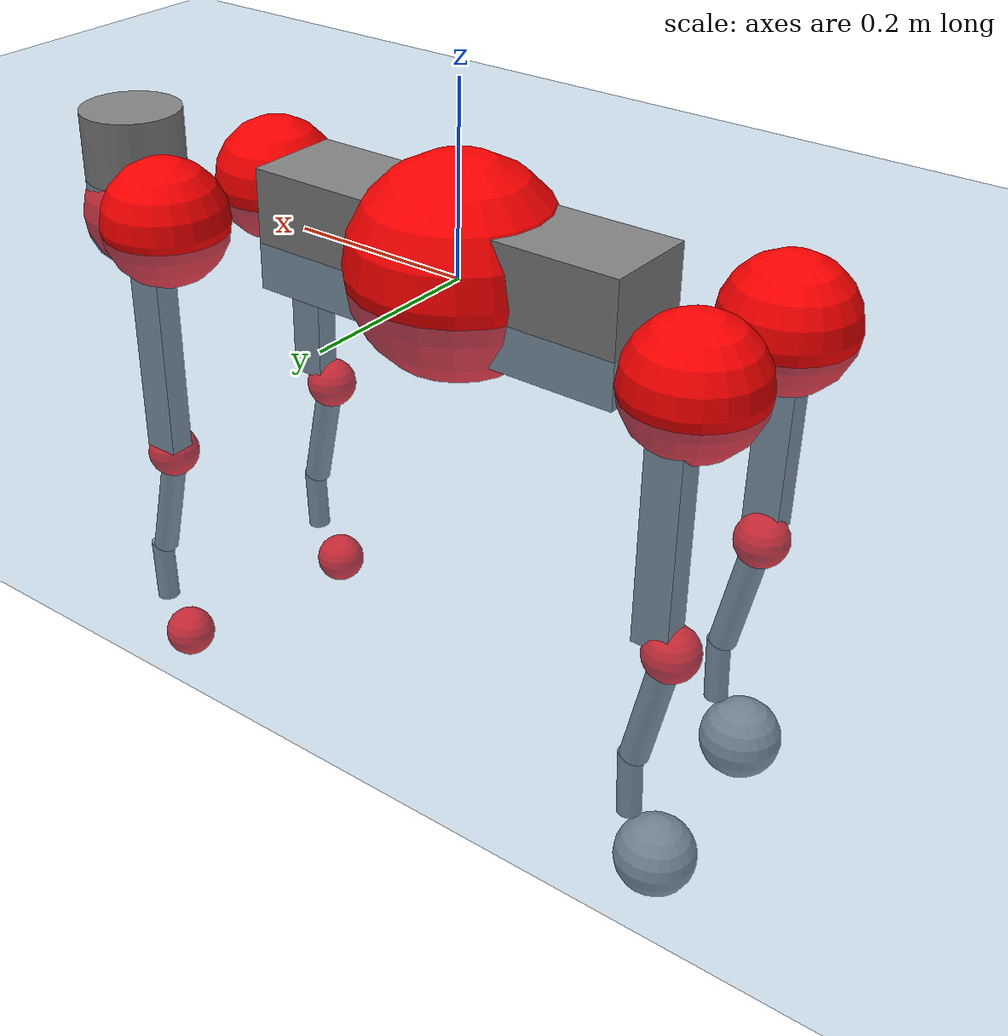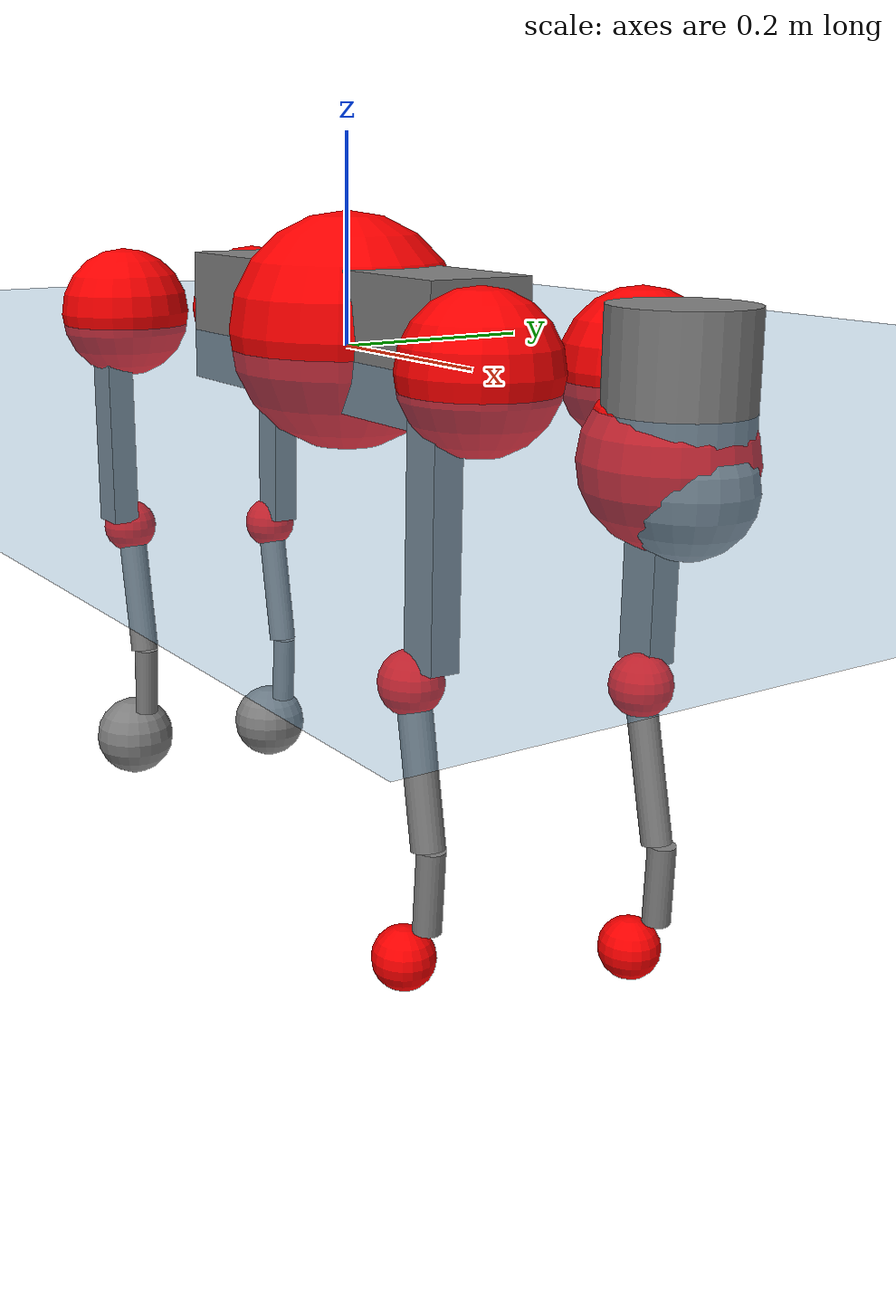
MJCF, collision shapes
<mujoco model="go2">
  <compiler angle="radian" assetdir="assets" balanceinertia="true" inertiafromgeom="false"/>

  <option timestep="0.005" density="1.2" viscosity="2e-05"/>

  <size nkey="1"/>

  <visual>
    <quality shadowsize="8192"/>
    <map shadowclip="0.5"/>
  </visual>

  <default>
    <default class="/">
      <geom contype="0" conaffinity="0" group="1" solref="-1000 -80"/>
      <site size="0.01 0.005 0.005" group="5"/>
      <general forcelimited="true" biastype="affine" gainprm="20" biasprm="0 -20 -0.5"/>
      <default class="go2">
        <joint armature="0.01" damping="0.01" frictionloss="0.2"/>
        <geom condim="1" margin="0.001"/>
        <default class="visual">
          <geom type="mesh" group="2"/>
        </default>
        <default class="collision">
          <geom group="3"/>
          <default class="foot">
            <geom size="0.022 0 0" condim="6" priority="1" friction="0.8 0.02 0.01" solimp="0.015 1 0.022"/>
          </default>
        </default>
        <default class="reward_collision_sphere">
          <geom group="5" rgba="1 0 0 1"/>
        </default>
      </default>
    </default>
  </default>

  <asset>
    <texture type="skybox" colorspace="auto" name="//unnamed_texture_0" builtin="gradient" rgb1="0.95 0.95 0.95" rgb2="0.95 0.95 0.95" width="100" height="600"/>
    <texture type="2d" colorspace="auto" name="texplane" builtin="checker" rgb1="0.345 0.575 0.748" rgb2="0.345 0.575 0.748" markrgb="1 1 1" width="512" height="512"/>
    <material name="MatPlane" class="/" texture="texplane" texuniform="true" texrepeat="2 2" specular="0.9"/>
    <material name="metal" class="/" rgba="0.9 0.95 0.95 1"/>
    <material name="black" class="/" rgba="0 0 0 1"/>
    <material name="white" class="/"/>
    <material name="gray" class="/" rgba="0.671705 0.692426 0.77427 1"/>
    <mesh name="base_0" class="/" file="base_0.obj"/>
    <mesh name="base_1" class="/" file="base_1.obj"/>
    <mesh name="base_2" class="/" file="base_2.obj"/>
    <mesh name="base_3" class="/" file="base_3.obj"/>
    <mesh name="base_4" class="/" file="base_4.obj"/>
    <mesh name="hip_0" class="/" file="hip_0.obj"/>
    <mesh name="hip_1" class="/" file="hip_1.obj"/>
    <mesh name="thigh_0" class="/" file="thigh_0.obj"/>
    <mesh name="thigh_1" class="/" file="thigh_1.obj"/>
    <mesh name="thigh_mirror_0" class="/" file="thigh_mirror_0.obj"/>
    <mesh name="thigh_mirror_1" class="/" file="thigh_mirror_1.obj"/>
    <mesh name="calf_0" class="/" file="calf_0.obj"/>
    <mesh name="calf_1" class="/" file="calf_1.obj"/>
    <mesh name="calf_mirror_0" class="/" file="calf_mirror_0.obj"/>
    <mesh name="calf_mirror_1" class="/" file="calf_mirror_1.obj"/>
    <mesh name="foot" class="/" file="foot.obj"/>
  </asset>

  <worldbody>
    <geom name="floor" class="/" size="100 100 0.125" type="plane" group="0" material="MatPlane"/>
    <light name="toplight_shadow" class="/" pos="0 0 5" dir="0.0990148 0.0990148 -0.990148" type="directional" ambient="0.04 0.04 0.04" diffuse="0.55 0.55 0.55" specular="0.12 0.12 0.12"/>
    <light name="toplight_fill" class="/" pos="0 0 5" dir="0.0990148 0.0990148 -0.990148" type="directional" castshadow="false" ambient="0.04 0.04 0.04" diffuse="0.3 0.3 0.3" specular="0.08 0.08 0.08"/>
    <body name="trunk" childclass="go2" pos="3.67869e-05 -0.000664472 0.0139636" quat="0.999998 -0.00190654 0.000617561 -1.70424e-05">
      <inertial pos="0.0287075 -0.0178134 -0.0212187" quat="-0.00282714 0.715048 -0.00277633 0.699064" mass="10.5661" diaginertia="0.99193 0.0129708 0.0629337"/>
      <joint name="//unnamed_joint_0" type="free" armature="0" damping="0" frictionloss="0"/>
      <geom name="//unnamed_geom_1" class="visual" material="black" mesh="base_0"/>
      <geom name="//unnamed_geom_2" class="visual" material="black" mesh="base_1"/>
      <geom name="//unnamed_geom_3" class="visual" material="black" mesh="base_2"/>
      <geom name="//unnamed_geom_4" class="visual" material="white" mesh="base_3"/>
      <geom name="//unnamed_geom_5" class="visual" material="gray" mesh="base_4"/>
      <geom name="trunk_1" class="collision" size="0.214205 0.053238 0.0649105" type="box"/>
      <geom name="trunk_2" class="collision" size="0.0569391 0.0512451" pos="0.453834 0 0.0116504" type="cylinder"/>
      <geom name="trunk_3" class="collision" size="0.0535227" pos="0.466573 0 -0.0699022"/>
      <geom name="//unnamed_geom_9" class="reward_collision_sphere" size="0.113878"/>
      <geom name="//unnamed_geom_10" class="reward_collision_sphere" size="0.0683269" pos="0.445872 0 -0.0524267"/>
      <site name="imu" pos="-0.0876576 0.0596779 0.000485198" size="0.0113878"/>
      <camera name="track" pos="0 -1.31782 0" quat="0.707107 0.707107 0 0" mode="trackcom"/>
      <camera name="ego_camera" pos="0.496828 0 0.0524267" quat="-0.5 -0.5 0.5 0.5"/>
      <body name="FL_hip" pos="0.312322 0.0435032 -0.00524295" quat="0.999992 -0.00388357 6.20155e-05 -0.00131017">
        <inertial pos="0.00758456 0.00538008 0.0115149" quat="0.520681 0.484447 0.49104 0.503073" mass="1.22335" diaginertia="0.00991785 9.40313e-05 0.000967445"/>
        <joint name="FL_hip_joint" pos="0 0 0" axis="0.999917 -0.012817 0.00106494" stiffness="0.000628349" range="-0.836752 1.00579" armature="0.00358709" damping="0" frictionloss="0.406374"/>
        <geom name="//unnamed_geom_11" class="visual" material="metal" mesh="hip_0"/>
        <geom name="//unnamed_geom_12" class="visual" material="gray" mesh="hip_1"/>
        <geom name="//unnamed_geom_13" class="collision" size="0.0523839 0.0227756" pos="0 0.0527126 0" quat="0.707107 0.707107 0 0" type="cylinder"/>
        <geom name="//unnamed_geom_14" class="reward_collision_sphere" size="0.0683269" pos="0 0.0461235 0"/>
        <body name="FL_thigh" pos="0.00214474 0.068879 -0.0105502" quat="1 0.000481798 -0.00031635 0.000519728">
          <inertial pos="-0.00172678 -0.011818 -0.0262981" quat="0.840846 0.0847076 -0.0250798 0.534016" mass="1.8483" diaginertia="0.057469 0.000712575 0.00280501"/>
          <joint name="FL_thigh_joint" pos="0 0 0" axis="-0.0495129 0.998543 -0.0214371" stiffness="0.0425408" range="-1.30711 3.28093" armature="0.00608445" damping="0.01224" frictionloss="0.16509"/>
          <geom name="//unnamed_geom_15" class="visual" material="metal" mesh="thigh_0"/>
          <geom name="//unnamed_geom_16" class="visual" material="gray" mesh="thigh_1"/>
          <geom name="//unnamed_geom_17" class="collision" size="0.12128 0.0139501 0.0193593" pos="0 0 -0.124076" quat="0.707107 0 0.707107 0" type="box"/>
          <body name="FL_calf" pos="0.0105534 -0.0137797 -0.262826" quat="0.999963 0.00610849 -0.00530371 -0.00301723">
            <inertial pos="0.0149517 2.66381e-06 -0.162494" quat="0.710676 0.00149299 -0.0044368 0.703504" mass="0.471291" diaginertia="0.0147003 0.00018515 0.000126334"/>
            <joint name="FL_calf_joint" pos="0 0 0" axis="0.0292794 0.999168 -0.0283888" range="-2.84278 -0.69987" armature="0.017951" damping="0" frictionloss="0.387116"/>
            <geom name="//unnamed_geom_18" class="visual" material="gray" mesh="calf_0"/>
            <geom name="//unnamed_geom_19" class="visual" material="black" mesh="calf_1"/>
            <geom name="FL_calf0" class="collision" size="0.0136654 0.0683269" pos="0.0127392 0 -0.0699022" quat="0.994493 0 -0.104807 0" type="cylinder"/>
            <geom name="//unnamed_geom_21" class="collision" size="0.0125266 0.0370104" pos="0.031848 0 -0.172425" quat="0.999688 0 0.0249974 0" type="cylinder"/>
            <geom name="//unnamed_geom_22" class="visual" pos="0 0 -0.248153" quat="1 0 0 0" material="black" mesh="foot"/>
            <geom name="FL_foot" class="foot" size="0.0106821" pos="-0.0031848 0 -0.248153"/>
            <geom name="//unnamed_geom_24" class="reward_collision_sphere" size="0.0284695"/>
            <geom name="//unnamed_geom_25" class="reward_collision_sphere" size="0.0284695" pos="-0.0031848 0 -0.248153"/>
            <site name="FL_foot" class="foot" pos="-0.0031848 0 -0.248153" size="0.0113878"/>
          </body>
        </body>
      </body>
      <body name="FR_hip" pos="0.298753 -0.0182422 -0.000979246" quat="0.99997 -0.00404268 -0.00616005 0.00229086">
        <inertial pos="-0.00584226 -0.00759724 0.00658803" quat="0.509457 0.498554 0.495262 0.496602" mass="1.07733" diaginertia="0.0116199 0.000102128 0.000983183"/>
        <joint name="FR_hip_joint" pos="0 0 0" axis="0.999865 0.0130835 0.00990372" range="-1.3444 1.39052" armature="0.0136119" damping="0" frictionloss="0.376139"/>
        <geom name="//unnamed_geom_26" class="visual" pos="0 -4.40919e-09 -1.89119e-07" quat="4.63268e-05 1 0 0" material="metal" mesh="hip_0"/>
        <geom name="//unnamed_geom_27" class="visual" pos="0 -7.14783e-09 4.67764e-07" quat="4.63268e-05 1 0 0" material="gray" mesh="hip_1"/>
        <geom name="//unnamed_geom_28" class="collision" size="0.0523839 0.0227756" pos="0 -0.0527126 0" quat="0.707107 0.707107 0 0" type="cylinder"/>
        <geom name="//unnamed_geom_29" class="reward_collision_sphere" size="0.0683269" pos="0 -0.0461235 0"/>
        <body name="FR_thigh" pos="-0.0185991 -0.0750154 0.00254123" quat="0.999991 -0.00207654 -0.00202043 -0.00318967">
          <inertial pos="-0.00968095 0.0208743 -0.0387058" quat="0.547723 -0.00940995 0.0907554 0.83167" mass="1.48205" diaginertia="0.0565256 0.000626545 0.00131083"/>
          <joint name="FR_thigh_joint" pos="0 0 0" axis="-0.0608236 -0.99616 -0.0629786" stiffness="0.0122226" range="-3.87319 1.91505" armature="0.00933382" damping="0.0759445" frictionloss="0.31595"/>
          <geom name="//unnamed_geom_30" class="visual" material="metal" mesh="thigh_mirror_0"/>
          <geom name="//unnamed_geom_31" class="visual" material="gray" mesh="thigh_mirror_1"/>
          <geom name="//unnamed_geom_32" class="collision" size="0.12128 0.0139501 0.0193593" pos="0 0 -0.124076" quat="0.707107 0 0.707107 0" type="box"/>
          <body name="FR_calf" pos="-0.0175649 -0.00735638 -0.259692" quat="0.999994 -0.000191267 0.00332953 0.00117767">
            <inertial pos="0.019963 0.00813235 -0.183178" quat="0.682264 0.0255484 -0.0086971 0.730607" mass="0.42944" diaginertia="0.0124829 0.000184518 0.000115708"/>
            <joint name="FR_calf_joint" pos="0 0 0" axis="0.006774 -0.995361 -0.0959725" stiffness="0.0473446" range="0.668706 3.03575" armature="0.0109476" damping="0" frictionloss="0.44585"/>
            <geom name="//unnamed_geom_33" class="visual" material="gray" mesh="calf_mirror_0"/>
            <geom name="//unnamed_geom_34" class="visual" material="black" mesh="calf_mirror_1"/>
            <geom name="FR_calf0" class="collision" size="0.0148042 0.0683269" pos="0.015924 0 -0.0699022" quat="0.995004 0 -0.0998334 0" type="cylinder"/>
            <geom name="//unnamed_geom_36" class="collision" size="0.0125266 0.0370104" pos="0.031848 0 -0.172425" quat="0.999688 0 0.0249974 0" type="cylinder"/>
            <geom name="//unnamed_geom_37" class="visual" pos="0 0 -0.248153" quat="1 0 0 0" material="black" mesh="foot"/>
            <geom name="FR_foot" class="foot" size="0.0180365" pos="-0.0031848 0 -0.248153"/>
            <geom name="//unnamed_geom_39" class="reward_collision_sphere" size="0.0284695"/>
            <geom name="//unnamed_geom_40" class="reward_collision_sphere" size="0.0284695" pos="-0.0031848 0 -0.248153"/>
            <site name="FR_foot" class="foot" pos="-0.0031848 0 -0.248153" size="0.0113878"/>
          </body>
        </body>
      </body>
      <body name="RL_hip" pos="-0.300389 0.0164412 -0.00518377" quat="0.999996 0.0021993 0.00189244 -0.000122885">
        <inertial pos="0.0198852 0.0171458 -0.0068811" quat="0.418351 0.526586 0.52939 0.517142" mass="1.23533" diaginertia="0.00793901 6.13222e-05 0.00115864"/>
        <joint name="RL_hip_joint" pos="0 0 0" axis="-0.997534 -0.038658 0.0585831" stiffness="0.0726729" range="-1.20176 1.27222" armature="0.0103608" damping="0.077378" frictionloss="0.0964204"/>
        <geom name="//unnamed_geom_41" class="visual" pos="-3.723e-09 0 -7.29793e-07" quat="4.63268e-05 0 1 0" material="metal" mesh="hip_0"/>
        <geom name="//unnamed_geom_42" class="visual" pos="-6.03543e-09 0 -6.47223e-07" quat="4.63268e-05 0 1 0" material="gray" mesh="hip_1"/>
        <geom name="//unnamed_geom_43" class="collision" size="0.0523839 0.0227756" pos="0 0.0527126 0" quat="0.707107 0.707107 0 0" type="cylinder"/>
        <geom name="//unnamed_geom_44" class="reward_collision_sphere" size="0.0683269" pos="0 0.0461235 0"/>
        <body name="RL_thigh" pos="-0.00202231 0.0789837 -0.00383976" quat="0.999983 -0.0036686 -0.00293069 -0.00349778">
          <inertial pos="0.00336161 -0.000881805 -0.0381444" quat="0.826392 0.113138 0.0206907 0.551223" mass="1.58624" diaginertia="0.0517903 0.000653007 0.00126911"/>
          <joint name="RL_thigh_joint" pos="0 0 0" axis="0.00485558 0.999959 0.007693" range="-0.497187 4.4873" armature="0.0119888" damping="0.0543219" frictionloss="0.21015"/>
          <geom name="//unnamed_geom_45" class="visual" material="metal" mesh="thigh_0"/>
          <geom name="//unnamed_geom_46" class="visual" material="gray" mesh="thigh_1"/>
          <geom name="//unnamed_geom_47" class="collision" size="0.12128 0.0139501 0.0193593" pos="0 0 -0.124076" quat="0.707107 0 0.707107 0" type="box"/>
          <body name="RL_calf" pos="-0.0145604 -0.00313873 -0.253294" quat="0.99997 -0.00379585 -0.00558602 0.00382493">
            <inertial pos="-0.00481095 0.00884847 -0.151209" quat="0.711428 0.00187637 -0.00298044 0.70275" mass="0.323707" diaginertia="0.0127677 0.000107736 6.47121e-05"/>
            <joint name="RL_calf_joint" pos="0 0 0" axis="-0.0179133 0.99796 -0.0612745" range="-2.69071 -0.441603" armature="0.013485" damping="0" frictionloss="0.100562"/>
            <geom name="//unnamed_geom_48" class="visual" material="gray" mesh="calf_0"/>
            <geom name="//unnamed_geom_49" class="visual" material="black" mesh="calf_1"/>
            <geom name="RL_calf0" class="collision" size="0.0148042 0.0683269" pos="0.015924 0 -0.0699022" quat="0.995004 0 -0.0998334 0" type="cylinder"/>
            <geom name="//unnamed_geom_51" class="collision" size="0.0125266 0.0370104" pos="0.031848 0 -0.172425" quat="0.999688 0 0.0249974 0" type="cylinder"/>
            <geom name="//unnamed_geom_52" class="visual" pos="0 0 -0.248153" quat="1 0 0 0" material="black" mesh="foot"/>
            <geom name="RL_foot" class="foot" size="0.0416754" pos="-0.0031848 0 -0.248153"/>
            <geom name="//unnamed_geom_54" class="reward_collision_sphere" size="0.0284695"/>
            <geom name="//unnamed_geom_55" class="reward_collision_sphere" size="0.0284695" pos="-0.0031848 0 -0.248153"/>
            <site name="RL_foot" class="foot" pos="-0.0031848 0 -0.248153" size="0.0113878"/>
          </body>
        </body>
      </body>
      <body name="RR_hip" pos="-0.305263 -0.0456393 -0.00310737" quat="0.999967 0.00659706 -0.00467106 -0.000800294">
        <inertial pos="0.0010603 -0.0125361 0.0105441" quat="0.539944 0.537729 0.483355 0.430901" mass="1.28826" diaginertia="0.00885729 9.84252e-05 0.00122452"/>
        <joint name="RR_hip_joint" pos="0 0 0" axis="-0.998911 -0.0369721 0.0284495" stiffness="0.0427508" range="-0.727225 0.890065" armature="0.0214966" damping="0.00207251" frictionloss="0.0812847"/>
        <geom name="//unnamed_geom_56" class="visual" pos="3.69068e-09 -4.40919e-09 -5.40674e-07" quat="2.14617e-09 4.63268e-05 4.63268e-05 -1" material="metal" mesh="hip_0"/>
        <geom name="//unnamed_geom_57" class="visual" pos="6.11536e-09 -7.14783e-09 -1.11499e-06" quat="2.14617e-09 4.63268e-05 4.63268e-05 -1" material="gray" mesh="hip_1"/>
        <geom name="//unnamed_geom_58" class="collision" size="0.0523839 0.0227756" pos="0 -0.0527126 0" quat="0.707107 0.707107 0 0" type="cylinder"/>
        <geom name="//unnamed_geom_59" class="reward_collision_sphere" size="0.0683269" pos="0 -0.0461235 0"/>
        <body name="RR_thigh" pos="0.00616224 -0.0665212 0.0178506" quat="0.999996 -0.000678603 0.00155401 0.00236616">
          <inertial pos="-0.00530864 -0.00470558 -0.0502711" quat="0.58075 0.0163455 0.0283203 0.813425" mass="2.16994" diaginertia="0.0800546 0.000942511 0.00250109"/>
          <joint name="RR_thigh_joint" pos="0 0 0" axis="0.0409459 -0.99786 -0.0509711" range="-4.74446 0.870581" armature="0" damping="0.00542086" frictionloss="0.126124"/>
          <geom name="//unnamed_geom_60" class="visual" material="metal" mesh="thigh_mirror_0"/>
          <geom name="//unnamed_geom_61" class="visual" material="gray" mesh="thigh_mirror_1"/>
          <geom name="//unnamed_geom_62" class="collision" size="0.12128 0.0139501 0.0193593" pos="0 0 -0.124076" quat="0.707107 0 0.707107 0" type="box"/>
          <body name="RR_calf" pos="-0.00545234 0.0149177 -0.254821" quat="0.999975 -0.0070596 -0.00102571 0.000202399">
            <inertial pos="-0.00128066 0.00367468 -0.162395" quat="0.681405 -0.0144511 0.0872849 0.72654" mass="0.49331" diaginertia="0.0158851 0.000230545 9.86704e-05"/>
            <joint name="RR_calf_joint" pos="0 0 0" axis="0.0844745 -0.996401 -0.00705203" range="0.535348 2.39055" armature="0.0136947" damping="0.00735322" frictionloss="0.154605"/>
            <geom name="//unnamed_geom_63" class="visual" material="gray" mesh="calf_mirror_0"/>
            <geom name="//unnamed_geom_64" class="visual" material="black" mesh="calf_mirror_1"/>
            <geom name="RR_calf0" class="collision" size="0.0148042 0.0683269" pos="0.015924 0 -0.0699022" quat="0.995004 0 -0.0998334 0" type="cylinder"/>
            <geom name="//unnamed_geom_66" class="collision" size="0.0125266 0.0370104" pos="0.031848 0 -0.172425" quat="0.999688 0 0.0249974 0" type="cylinder"/>
            <geom name="//unnamed_geom_67" class="visual" pos="0 0 -0.248153" quat="1 0 0 0" material="black" mesh="foot"/>
            <geom name="RR_foot" class="foot" size="0.0430594" pos="-0.0031848 0 -0.248153"/>
            <geom name="//unnamed_geom_69" class="reward_collision_sphere" size="0.0284695"/>
            <geom name="//unnamed_geom_70" class="reward_collision_sphere" size="0.0284695" pos="-0.0031848 0 -0.248153"/>
            <site name="RR_foot" class="foot" pos="-0.0031848 0 -0.248153" size="0.0113878"/>
          </body>
        </body>
      </body>
    </body>
  </worldbody>

  <contact>
    <pair class="/" geom1="floor" geom2="FL_foot" name="//unnamed_contact_0"/>
    <pair class="/" geom1="floor" geom2="FR_foot" name="//unnamed_contact_1"/>
    <pair class="/" geom1="floor" geom2="RL_foot" name="//unnamed_contact_2"/>
    <pair class="/" geom1="floor" geom2="RR_foot" name="//unnamed_contact_3"/>
  </contact>

  <actuator>
    <general name="FL_hip" class="/" joint="FL_hip_joint" forcerange="-39.2055 39.2055" gainprm="12.8173" biasprm="0 -12.8173 -0.42068"/>
    <general name="FL_thigh" class="/" joint="FL_thigh_joint" forcerange="-46.259 46.259" gainprm="12.8173" biasprm="0 -12.8173 -0.42068"/>
    <general name="FL_calf" class="/" joint="FL_calf_joint" forcerange="-36.0098 36.0098" gainprm="12.8173" biasprm="0 -12.8173 -0.42068"/>
    <general name="FR_hip" class="/" joint="FR_hip_joint" forcerange="-35.8775 35.8775" gainprm="12.8173" biasprm="0 -12.8173 -0.42068"/>
    <general name="FR_thigh" class="/" joint="FR_thigh_joint" forcerange="-17.4108 17.4108" gainprm="12.8173" biasprm="0 -12.8173 -0.42068"/>
    <general name="FR_calf" class="/" joint="FR_calf_joint" forcerange="-72.8684 72.8684" gainprm="12.8173" biasprm="0 -12.8173 -0.42068"/>
    <general name="RL_hip" class="/" joint="RL_hip_joint" forcerange="-13.5352 13.5352" gainprm="12.8173" biasprm="0 -12.8173 -0.42068"/>
    <general name="RL_thigh" class="/" joint="RL_thigh_joint" forcerange="-27.7202 27.7202" gainprm="12.8173" biasprm="0 -12.8173 -0.42068"/>
    <general name="RL_calf" class="/" joint="RL_calf_joint" forcerange="-74.3596 74.3596" gainprm="12.8173" biasprm="0 -12.8173 -0.42068"/>
    <general name="RR_hip" class="/" joint="RR_hip_joint" forcerange="-46.0042 46.0042" gainprm="12.8173" biasprm="0 -12.8173 -0.42068"/>
    <general name="RR_thigh" class="/" joint="RR_thigh_joint" forcerange="-34.0224 34.0224" gainprm="12.8173" biasprm="0 -12.8173 -0.42068"/>
    <general name="RR_calf" class="/" joint="RR_calf_joint" forcerange="-66.3355 66.3355" gainprm="12.8173" biasprm="0 -12.8173 -0.42068"/>
  </actuator>

  <sensor>
    <gyro site="imu" name="imu_angular_velocity"/>
    <velocimeter site="imu" name="imu_linear_velocity"/>
    <framelinvel objtype="site" objname="FL_foot" name="FL_foot_global_linear_velocity"/>
    <framelinvel objtype="site" objname="FR_foot" name="FR_foot_global_linear_velocity"/>
    <framelinvel objtype="site" objname="RL_foot" name="RL_foot_global_linear_velocity"/>
    <framelinvel objtype="site" objname="RR_foot" name="RR_foot_global_linear_velocity"/>
  </sensor>

  <keyframe>
    <key name="home" qpos="0 0 0.325 1 0 0 0 0.1 0.8 -1.5 -0.1 -0.8 1.5 -0.1 0.8 -1.5 0.1 -0.8 1.5"/>
  </keyframe>
</mujoco>
